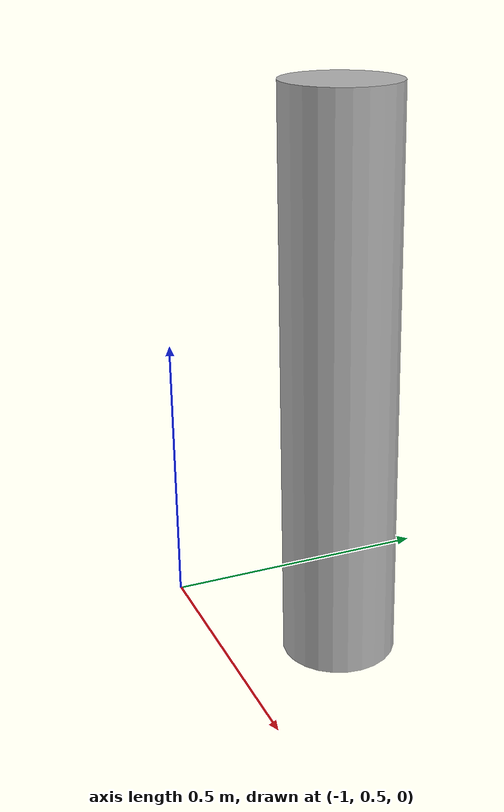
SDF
<sdf version='1.12'>
  <model name='cylinder_1'>
    <plugin filename="gz-sim-touchplugin-system"            name="gz::sim::systems::TouchPlugin">        <target>turtlebot3_burger</target>        <namespace>obstacle</namespace>        <time>0.001</time>        <enabled>true</enabled>    </plugin>    <pose>-0.7 0.7 0.5 0.0 0.0 0.0</pose>
    <link name='cylinder_link'>
      <sensor name='sensor_contact' type='contact'>          <contact>              <collision>cylinder_collision</collision>          </contact>      </sensor>      <inertial>
        <inertia>
          <ixx>10.3</ixx>
          <ixy>0</ixy>
          <ixz>0</ixz>
          <iyy>10.3</iyy>
          <iyz>0</iyz>
          <izz>0.6000000000000001</izz>
        </inertia>
        <mass>120</mass>
        <pose>0 0 0 0 0 0</pose>
      </inertial>
      <collision name='cylinder_collision'>
        <geometry>
          <cylinder>
            <radius>0.1</radius>
            <length>1.0</length>
          </cylinder>
        </geometry>
        <surface>
          <friction>
            <ode/>
          </friction>
          <bounce/>
          <contact/>
        </surface>
      </collision>
      <visual name='cylinder_visual'>
        <geometry>
          <cylinder>
            <radius>0.1</radius>
            <length>1.0</length>
          </cylinder>
        </geometry>
        <material>
          <ambient>0.300000012 0.300000012 0.300000012 1</ambient>
          <diffuse>0.699999988 0.699999988 0.699999988 1</diffuse>
          <specular>1 1 1 1</specular>
        </material>
      </visual>
      <pose>0 0 0 0 0 0</pose>
      <enable_wind>false</enable_wind>
    </link>
    <static>false</static>
    <self_collide>false</self_collide>
  </model>
</sdf>
